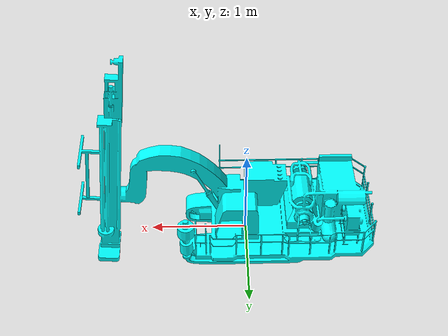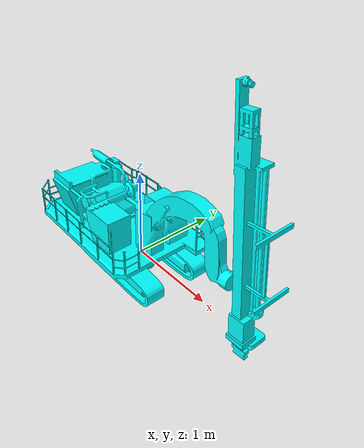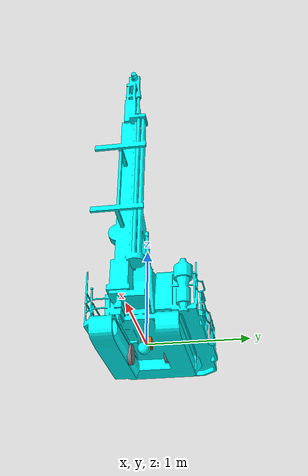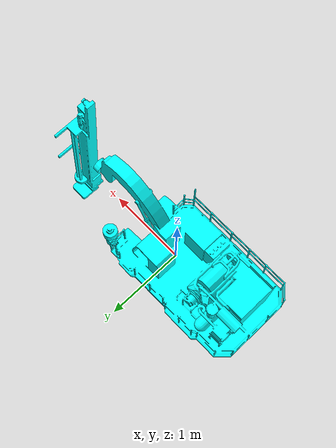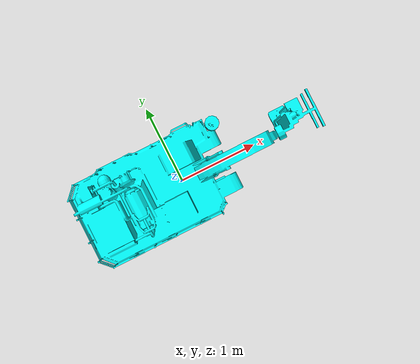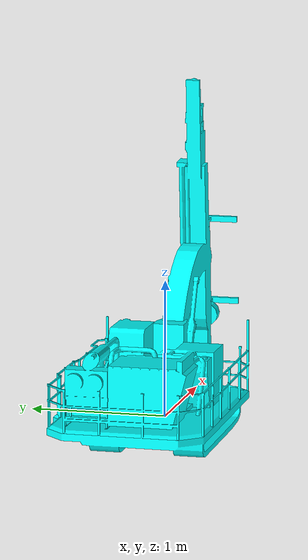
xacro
<?xml version="1.0"?>
<robot xmlns:xacro="http://www.ros.org/wiki/xacro" name="rock_commander_robot">

  <!-- Input ARG -->
  <xacro:arg name="scale" default="0.1"/>
  <xacro:property name="scale" value="$(arg scale)"/>

  <!-- Define robot constants -->
  <xacro:property name="base_width" value="0.31" />
  <xacro:property name="base_length" value="0.42" />
  <xacro:property name="base_height" value="0.18" />

  <xacro:property name="wheel_radius" value="0.10" />
  <xacro:property name="wheel_width" value="0.04" />
  <xacro:property name="wheel_ygap" value="0.025" />
  <xacro:property name="wheel_zoff" value="0.05" />
  <xacro:property name="wheel_xoff" value="0.12" />

  <xacro:property name="caster_xoff" value="0.14" />

  <!-- Define some commonly used intertial properties  -->
  <xacro:macro name="box_inertia" params="m w h d">
    <inertial>
      <origin xyz="0 0 0" rpy="${pi/2} 0 ${pi/2}" />
      <mass value="${m}" />
      <inertia ixx="${(m/12) * (h*h + d*d)}" ixy="0.0" ixz="0.0" iyy="${(m/12) * (w*w + d*d)}" iyz="0.0" izz="${(m/12) * (w*w + h*h)}" />
    </inertial>
  </xacro:macro>

  <xacro:macro name="cylinder_inertia" params="m r h">
    <inertial>
      <origin xyz="0 0 0" rpy="${pi/2} 0 0" />
      <mass value="${m}" />
      <inertia ixx="${(m/12) * (3*r*r + h*h)}" ixy="0" ixz="0" iyy="${(m/12) * (3*r*r + h*h)}" iyz="0" izz="${(m/2) * (r*r)}" />
    </inertial>
  </xacro:macro>

  <xacro:macro name="sphere_inertia" params="m r">
    <inertial>
      <mass value="${m}" />
      <inertia ixx="${(2/5) * m * (r*r)}" ixy="0.0" ixz="0.0" iyy="${(2/5) * m * (r*r)}" iyz="0.0" izz="${(2/5) * m * (r*r)}" />
    </inertial>
  </xacro:macro>

  <!-- Robot Base -->
  <link name="base_link">
    <visual>
      <origin xyz="0 0 -0.15" rpy="0 0 0"/>
      <geometry>
        <mesh filename="/home/khoa/multi_robot_playground2/install/rock_commander_robot_description/share/rock_commander_robot_description/meshes/base/another_base.dae"
              scale="${scale} ${scale} ${scale}" />
      </geometry>
      <material name="Cyan">
        <color rgba="0 1.0 1.0 1.0" />
      </material>
    </visual>

    <collision>
      <geometry>
        <box size="${base_length} ${base_width} ${base_height}" />
      </geometry>
    </collision>

    <xacro:box_inertia m="15" w="${base_width}" d="${base_length}" h="${base_height}" />
  </link>

  <!-- Robot Footprint -->
  <link name="base_footprint">
    <xacro:box_inertia m="0" w="0" d="0" h="0" />
  </link>

  <joint name="base_joint" type="fixed">
    <parent link="base_link" />
    <child link="base_footprint" />
    <origin xyz="0.0 0.0 ${-(wheel_radius+wheel_zoff)}" rpy="0 0 0" />
  </joint>

  <!-- Wheels -->
  <xacro:macro name="wheel" params="prefix x_reflect y_reflect">
    <link name="${prefix}_link">
      <visual>
        <origin xyz="0 0 0" rpy="${pi/2} 0 0" />
        <geometry>
          <cylinder radius="${wheel_radius}" length="${wheel_width}" />
        </geometry>
        <material name="Gray">
          <color rgba="0.5 0.5 0.5 1.0" />
        </material>
      </visual>

      <collision>
        <origin xyz="0 0 0" rpy="${pi/2} 0 0" />
        <geometry>
          <cylinder radius="${wheel_radius}" length="${wheel_width}" />
        </geometry>
      </collision>

      <xacro:cylinder_inertia m="0.5" r="${wheel_radius}" h="${wheel_width}" />
    </link>

    <joint name="${prefix}_joint" type="continuous">
      <parent link="base_link" />
      <child link="${prefix}_link" />
      <origin xyz="${x_reflect*wheel_xoff} ${y_reflect*(base_width/2+wheel_ygap)} ${-wheel_zoff}" rpy="0 0 0" />
      <axis xyz="0 1 0" />
    </joint>
  </xacro:macro>

  <xacro:wheel prefix="drivewhl_l" x_reflect="-1" y_reflect="1" />
  <xacro:wheel prefix="drivewhl_r" x_reflect="-1" y_reflect="-1" />

  <gazebo>
    <plugin name='diff_drive' filename='libgazebo_ros_diff_drive.so'>

      <!-- wheels -->
      <left_joint>drivewhl_l_joint</left_joint>
      <right_joint>drivewhl_r_joint</right_joint>

      <!-- kinematics -->
      <wheel_separation>0.4</wheel_separation>
      <wheel_diameter>0.2</wheel_diameter>

      <!-- limits -->
      <max_wheel_torque>20</max_wheel_torque>
      <max_wheel_acceleration>1.0</max_wheel_acceleration>

      <!-- output -->
      <publish_odom>true</publish_odom>
      <publish_odom_tf>false</publish_odom_tf>
      <publish_wheel_tf>false</publish_wheel_tf>

      <odometry_frame>odom</odometry_frame>
      <robot_base_frame>base_link</robot_base_frame>
    </plugin>
  </gazebo>

  <!-- CASTER_LINK -->
  <link name="front_caster">
    <visual>
      <geometry>
        <sphere radius="${(wheel_radius+wheel_zoff-(base_height/2))}" />
      </geometry>
      <material name="Cyan">
        <color rgba="0 1.0 1.0 1.0" />
      </material>
    </visual>

    <collision>
      <origin xyz="0 0 0" rpy="0 0 0" />
      <geometry>
        <sphere radius="${(wheel_radius+wheel_zoff-(base_height/2))}" />
      </geometry>
    </collision>

    <xacro:sphere_inertia m="0.5" r="${(wheel_radius+wheel_zoff-(base_height/2))}" />
  </link>

  <joint name="caster_joint" type="fixed">
    <parent link="base_link" />
    <child link="front_caster" />
    <origin xyz="${caster_xoff} 0.0 ${-(base_height/2)}" rpy="0 0 0" />
  </joint>

  <!-- IMU_LINK -->
  <link name="imu_link">
    <visual>
      <geometry>
        <box size="0.1 0.1 0.1" />
      </geometry>
    </visual>

    <collision>
      <geometry>
        <box size="0.1 0.1 0.1" />
      </geometry>
    </collision>

    <xacro:box_inertia m="0.1" w="0.1" d="0.1" h="0.1" />
  </link>

  <joint name="imu_joint" type="fixed">
    <parent link="base_link" />
    <child link="imu_link" />
    <origin xyz="0 0 0.01" />
  </joint>

  <gazebo reference="imu_link">
    <sensor name="imu_sensor" type="imu">
      <plugin filename="libgazebo_ros_imu_sensor.so" name="imu_plugin">
        <ros>
          <remapping>~/out:=imu</remapping>
        </ros>
        <initial_orientation_as_reference>false</initial_orientation_as_reference>
      </plugin>
      <always_on>true</always_on>
      <update_rate>100</update_rate>
      <visualize>true</visualize>
      <imu>
        <angular_velocity>
          <x>
            <noise type="gaussian">
              <mean>0.0</mean>
              <stddev>2e-4</stddev>
              <bias_mean>0.0000075</bias_mean>
              <bias_stddev>0.0000008</bias_stddev>
            </noise>
          </x>
          <y>
            <noise type="gaussian">
              <mean>0.0</mean>
              <stddev>2e-4</stddev>
              <bias_mean>0.0000075</bias_mean>
              <bias_stddev>0.0000008</bias_stddev>
            </noise>
          </y>
          <z>
            <noise type="gaussian">
              <mean>0.0</mean>
              <stddev>2e-4</stddev>
              <bias_mean>0.0000075</bias_mean>
              <bias_stddev>0.0000008</bias_stddev>
            </noise>
          </z>
        </angular_velocity>
        <linear_acceleration>
          <x>
            <noise type="gaussian">
              <mean>0.0</mean>
              <stddev>1.7e-2</stddev>
              <bias_mean>0.1</bias_mean>
              <bias_stddev>0.001</bias_stddev>
            </noise>
          </x>
          <y>
            <noise type="gaussian">
              <mean>0.0</mean>
              <stddev>1.7e-2</stddev>
              <bias_mean>0.1</bias_mean>
              <bias_stddev>0.001</bias_stddev>
            </noise>
          </y>
          <z>
            <noise type="gaussian">
              <mean>0.0</mean>
              <stddev>1.7e-2</stddev>
              <bias_mean>0.1</bias_mean>
              <bias_stddev>0.001</bias_stddev>
            </noise>
          </z>
        </linear_acceleration>
      </imu>
    </sensor>
  </gazebo>

  <!-- LIDAR_LINK -->

  <!-- CAMERA_LINK -->
</robot>
